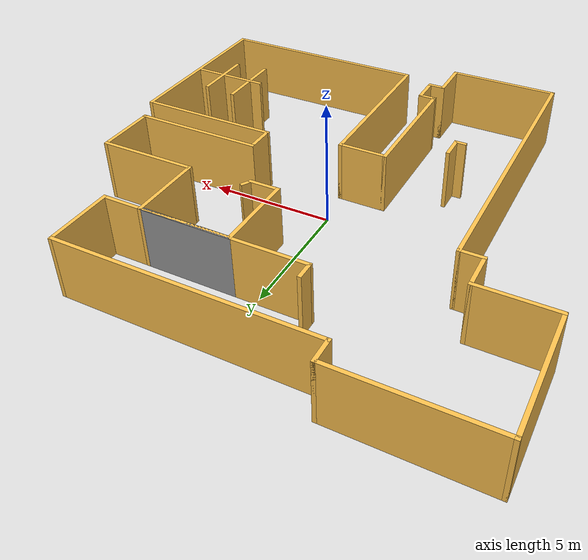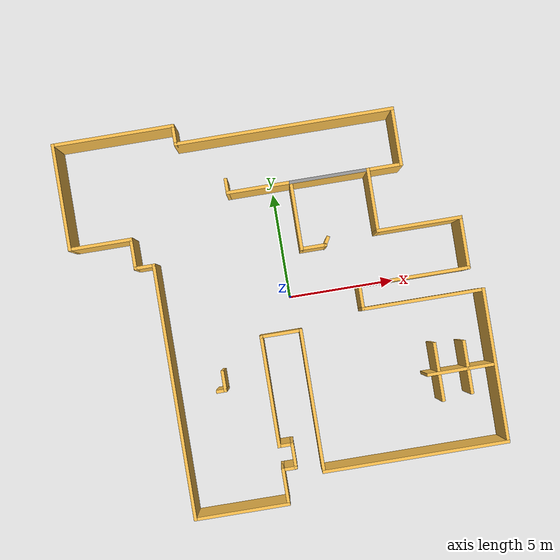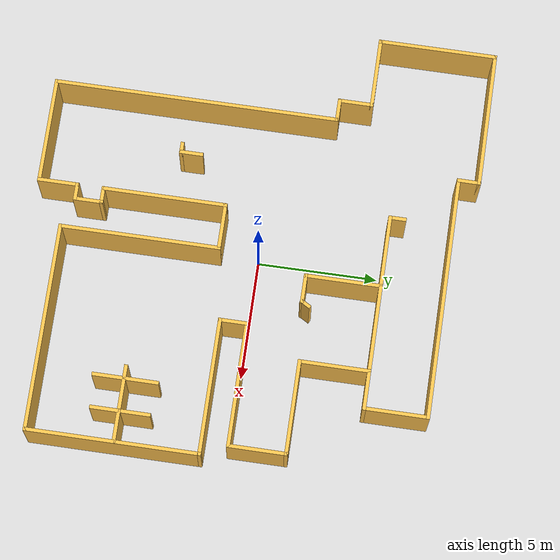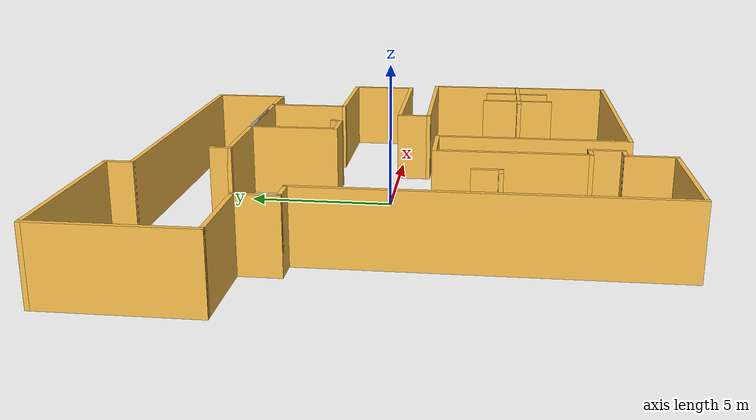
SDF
<?xml version='1.0'?>
<sdf version='1.6'>
  <model name='map_103'>
    <pose frame=''>-0.429802 -0.384357 0 0 -0 0</pose>
    <link name='Wall_10'>
      <collision name='Wall_10_Collision'>
        <geometry>
          <box>
            <size>1 0.15 2.5</size>
          </box>
        </geometry>
        <pose frame=''>0 0 1.25 0 -0 0</pose>
      </collision>
      <visual name='Wall_10_Visual'>
        <pose frame=''>0 0 1.25 0 -0 0</pose>
        <geometry>
          <box>
            <size>1 0.15 2.5</size>
          </box>
        </geometry>
        <material>
          <script>
            <uri>file://media/materials/scripts/gazebo.material</uri>
            <name>Gazebo/Grey</name>
          </script>
          <ambient>1 0.764706 0.305882 1</ambient>
        </material>
        <meta>
          <layer>0</layer>
        </meta>
      </visual>
      <pose frame=''>-5.975 2.825 0 0 -0 0</pose>
    </link>
    <link name='Wall_11'>
      <collision name='Wall_11_Collision'>
        <geometry>
          <box>
            <size>12 0.15 2.5</size>
          </box>
        </geometry>
        <pose frame=''>0 0 1.25 0 -0 0</pose>
      </collision>
      <visual name='Wall_11_Visual'>
        <pose frame=''>0 0 1.25 0 -0 0</pose>
        <geometry>
          <box>
            <size>12 0.15 2.5</size>
          </box>
        </geometry>
        <material>
          <script>
            <uri>file://media/materials/scripts/gazebo.material</uri>
            <name>Gazebo/Grey</name>
          </script>
          <ambient>1 0.764706 0.305882 1</ambient>
        </material>
        <meta>
          <layer>0</layer>
        </meta>
      </visual>
      <pose frame=''>-5.55 -3.1 0 0 -0 -1.5708</pose>
    </link>
    <link name='Wall_12'>
      <collision name='Wall_12_Collision'>
        <geometry>
          <box>
            <size>4.5 0.15 2.5</size>
          </box>
        </geometry>
        <pose frame=''>0 0 1.25 0 -0 0</pose>
      </collision>
      <visual name='Wall_12_Visual'>
        <pose frame=''>0 0 1.25 0 -0 0</pose>
        <geometry>
          <box>
            <size>4.5 0.15 2.5</size>
          </box>
        </geometry>
        <material>
          <script>
            <uri>file://media/materials/scripts/gazebo.material</uri>
            <name>Gazebo/Grey</name>
          </script>
          <ambient>1 0.764706 0.305882 1</ambient>
        </material>
        <meta>
          <layer>0</layer>
        </meta>
      </visual>
      <pose frame=''>-3.375 -9.025 0 0 -0 0</pose>
    </link>
    <link name='Wall_13'>
      <collision name='Wall_13_Collision'>
        <geometry>
          <box>
            <size>1.75 0.15 2.5</size>
          </box>
        </geometry>
        <pose frame=''>0 0 1.25 0 -0 0</pose>
      </collision>
      <visual name='Wall_13_Visual'>
        <pose frame=''>0 0 1.25 0 -0 0</pose>
        <geometry>
          <box>
            <size>1.75 0.15 2.5</size>
          </box>
        </geometry>
        <material>
          <script>
            <uri>file://media/materials/scripts/gazebo.material</uri>
            <name>Gazebo/Grey</name>
          </script>
          <ambient>1 0.764706 0.305882 1</ambient>
        </material>
        <meta>
          <layer>0</layer>
        </meta>
      </visual>
      <pose frame=''>-1.2 -8.225 0 0 -0 1.5708</pose>
    </link>
    <link name='Wall_14'>
      <collision name='Wall_14_Collision'>
        <geometry>
          <box>
            <size>0.75 0.15 2.5</size>
          </box>
        </geometry>
        <pose frame=''>0 0 1.25 0 -0 0</pose>
      </collision>
      <visual name='Wall_14_Visual'>
        <pose frame=''>0 0 1.25 0 -0 0</pose>
        <geometry>
          <box>
            <size>0.75 0.15 2.5</size>
          </box>
        </geometry>
        <material>
          <script>
            <uri>file://media/materials/scripts/gazebo.material</uri>
            <name>Gazebo/Grey</name>
          </script>
          <ambient>1 0.764706 0.305882 1</ambient>
        </material>
        <meta>
          <layer>0</layer>
        </meta>
      </visual>
      <pose frame=''>-0.9 -7.425 0 0 -0 0</pose>
    </link>
    <link name='Wall_15'>
      <collision name='Wall_15_Collision'>
        <geometry>
          <box>
            <size>1.25 0.15 2.5</size>
          </box>
        </geometry>
        <pose frame=''>0 0 1.25 0 -0 0</pose>
      </collision>
      <visual name='Wall_15_Visual'>
        <pose frame=''>0 0 1.25 0 -0 0</pose>
        <geometry>
          <box>
            <size>1.25 0.15 2.5</size>
          </box>
        </geometry>
        <material>
          <script>
            <uri>file://media/materials/scripts/gazebo.material</uri>
            <name>Gazebo/Grey</name>
          </script>
          <ambient>1 0.764706 0.305882 1</ambient>
        </material>
        <meta>
          <layer>0</layer>
        </meta>
      </visual>
      <pose frame=''>-0.6 -6.875 0 0 -0 1.5708</pose>
    </link>
    <link name='Wall_16'>
      <collision name='Wall_16_Collision'>
        <geometry>
          <box>
            <size>0.75 0.15 2.5</size>
          </box>
        </geometry>
        <pose frame=''>0 0 1.25 0 -0 0</pose>
      </collision>
      <visual name='Wall_16_Visual'>
        <pose frame=''>0 0 1.25 0 -0 0</pose>
        <geometry>
          <box>
            <size>0.75 0.15 2.5</size>
          </box>
        </geometry>
        <material>
          <script>
            <uri>file://media/materials/scripts/gazebo.material</uri>
            <name>Gazebo/Grey</name>
          </script>
          <ambient>1 0.764706 0.305882 1</ambient>
        </material>
        <meta>
          <layer>0</layer>
        </meta>
      </visual>
      <pose frame=''>-0.9 -6.325 0 0 -0 3.14159</pose>
    </link>
    <link name='Wall_20'>
      <collision name='Wall_20_Collision'>
        <geometry>
          <box>
            <size>8.75 0.15 2.5</size>
          </box>
        </geometry>
        <pose frame=''>0 0 1.25 0 -0 0</pose>
      </collision>
      <visual name='Wall_20_Visual'>
        <pose frame=''>0 0 1.25 0 -0 0</pose>
        <geometry>
          <box>
            <size>8.75 0.15 2.5</size>
          </box>
        </geometry>
        <material>
          <script>
            <uri>file://media/materials/scripts/gazebo.material</uri>
            <name>Gazebo/Grey</name>
          </script>
          <ambient>1 0.764706 0.305882 1</ambient>
        </material>
        <meta>
          <layer>0</layer>
        </meta>
      </visual>
      <pose frame=''>4.95 -7.825 0 0 -0 0</pose>
    </link>
    <link name='Wall_21'>
      <collision name='Wall_21_Collision'>
        <geometry>
          <box>
            <size>7.25 0.15 2.5</size>
          </box>
        </geometry>
        <pose frame=''>0 0 1.25 0 -0 0</pose>
      </collision>
      <visual name='Wall_21_Visual'>
        <pose frame=''>0 0 1.25 0 -0 0</pose>
        <geometry>
          <box>
            <size>7.25 0.15 2.5</size>
          </box>
        </geometry>
        <material>
          <script>
            <uri>file://media/materials/scripts/gazebo.material</uri>
            <name>Gazebo/Grey</name>
          </script>
          <ambient>1 0.764706 0.305882 1</ambient>
        </material>
        <meta>
          <layer>0</layer>
        </meta>
      </visual>
      <pose frame=''>9.25 -4.275 0 0 -0 1.5708</pose>
    </link>
    <link name='Wall_22'>
      <collision name='Wall_22_Collision'>
        <geometry>
          <box>
            <size>5.75 0.15 2.5</size>
          </box>
        </geometry>
        <pose frame=''>0 0 1.25 0 -0 0</pose>
      </collision>
      <visual name='Wall_22_Visual'>
        <pose frame=''>0 0 1.25 0 -0 0</pose>
        <geometry>
          <box>
            <size>5.75 0.15 2.5</size>
          </box>
        </geometry>
        <material>
          <script>
            <uri>file://media/materials/scripts/gazebo.material</uri>
            <name>Gazebo/Grey</name>
          </script>
          <ambient>1 0.764706 0.305882 1</ambient>
        </material>
        <meta>
          <layer>0</layer>
        </meta>
      </visual>
      <pose frame=''>6.45 -0.725 0 0 -0 3.14159</pose>
    </link>
    <link name='Wall_23'>
      <collision name='Wall_23_Collision'>
        <geometry>
          <box>
            <size>1.25 0.15 2.5</size>
          </box>
        </geometry>
        <pose frame=''>0 0 1.25 0 -0 0</pose>
      </collision>
      <visual name='Wall_23_Visual'>
        <pose frame=''>0 0 1.25 0 -0 0</pose>
        <geometry>
          <box>
            <size>1.25 0.15 2.5</size>
          </box>
        </geometry>
        <material>
          <script>
            <uri>file://media/materials/scripts/gazebo.material</uri>
            <name>Gazebo/Grey</name>
          </script>
          <ambient>1 0.764706 0.305882 1</ambient>
        </material>
        <meta>
          <layer>0</layer>
        </meta>
      </visual>
      <pose frame=''>3.65 -0.175 0 0 -0 1.5708</pose>
    </link>
    <link name='Wall_24'>
      <collision name='Wall_24_Collision'>
        <geometry>
          <box>
            <size>5.25 0.15 2.5</size>
          </box>
        </geometry>
        <pose frame=''>0 0 1.25 0 -0 0</pose>
      </collision>
      <visual name='Wall_24_Visual'>
        <pose frame=''>0 0 1.25 0 -0 0</pose>
        <geometry>
          <box>
            <size>5.25 0.15 2.5</size>
          </box>
        </geometry>
        <material>
          <script>
            <uri>file://media/materials/scripts/gazebo.material</uri>
            <name>Gazebo/Grey</name>
          </script>
          <ambient>1 0.764706 0.305882 1</ambient>
        </material>
        <meta>
          <layer>0</layer>
        </meta>
      </visual>
      <pose frame=''>6.2 0.375 0 0 -0 0</pose>
    </link>
    <link name='Wall_26'>
      <collision name='Wall_26_Collision'>
        <geometry>
          <box>
            <size>2.5 0.15 2.5</size>
          </box>
        </geometry>
        <pose frame=''>0 0 1.25 0 -0 0</pose>
      </collision>
      <visual name='Wall_26_Visual'>
        <pose frame=''>0 0 1.25 0 -0 0</pose>
        <geometry>
          <box>
            <size>2.5 0.15 2.5</size>
          </box>
        </geometry>
        <material>
          <script>
            <uri>file://media/materials/scripts/gazebo.material</uri>
            <name>Gazebo/Grey</name>
          </script>
          <ambient>1 0.764706 0.305882 1</ambient>
        </material>
        <meta>
          <layer>0</layer>
        </meta>
      </visual>
      <pose frame=''>8.75 1.55 0 0 -0 1.5708</pose>
    </link>
    <link name='Wall_27'>
      <collision name='Wall_27_Collision'>
        <geometry>
          <box>
            <size>4 0.15 2.5</size>
          </box>
        </geometry>
        <pose frame=''>0 0 1.25 0 -0 0</pose>
      </collision>
      <visual name='Wall_27_Visual'>
        <pose frame=''>0 0 1.25 0 -0 0</pose>
        <geometry>
          <box>
            <size>4 0.15 2.5</size>
          </box>
        </geometry>
        <material>
          <script>
            <uri>file://media/materials/scripts/gazebo.material</uri>
            <name>Gazebo/Grey</name>
          </script>
          <ambient>1 0.764706 0.305882 1</ambient>
        </material>
        <meta>
          <layer>0</layer>
        </meta>
      </visual>
      <pose frame=''>6.825 2.725 0 0 -0 3.14159</pose>
    </link>
    <link name='Wall_28'>
      <collision name='Wall_28_Collision'>
        <geometry>
          <box>
            <size>3 0.15 2.5</size>
          </box>
        </geometry>
        <pose frame=''>0 0 1.25 0 -0 0</pose>
      </collision>
      <visual name='Wall_28_Visual'>
        <pose frame=''>0 0 1.25 0 -0 0</pose>
        <geometry>
          <box>
            <size>3 0.15 2.5</size>
          </box>
        </geometry>
        <material>
          <script>
            <uri>file://media/materials/scripts/gazebo.material</uri>
            <name>Gazebo/Grey</name>
          </script>
          <ambient>1 0.764706 0.305882 1</ambient>
        </material>
        <meta>
          <layer>0</layer>
        </meta>
      </visual>
      <pose frame=''>4.9 4.15 0 0 -0 1.5708</pose>
    </link>
    <link name='Wall_29'>
      <collision name='Wall_29_Collision'>
        <geometry>
          <box>
            <size>3.75 0.15 2.5</size>
          </box>
        </geometry>
        <pose frame=''>0 0 1.25 0 -0 0</pose>
      </collision>
      <visual name='Wall_29_Visual'>
        <pose frame=''>0 0 1.25 0 -0 0</pose>
        <geometry>
          <box>
            <size>3.75 0.15 2.5</size>
          </box>
        </geometry>
        <material>
          <script>
            <uri>file://media/materials/scripts/gazebo.material</uri>
            <name>Gazebo/Grey</name>
          </script>
          <ambient>1 1 1 1</ambient>
        </material>
        <meta>
          <layer>0</layer>
        </meta>
      </visual>
      <pose frame=''>3.1 5.575 0 0 -0 3.14159</pose>
    </link>
    <link name='Wall_30'>
      <collision name='Wall_30_Collision'>
        <geometry>
          <box>
            <size>3.25 0.15 2.5</size>
          </box>
        </geometry>
        <pose frame=''>0 0 1.25 0 -0 0</pose>
      </collision>
      <visual name='Wall_30_Visual'>
        <pose frame=''>0 0 1.25 0 -0 0</pose>
        <geometry>
          <box>
            <size>3.25 0.15 2.5</size>
          </box>
        </geometry>
        <material>
          <script>
            <uri>file://media/materials/scripts/gazebo.material</uri>
            <name>Gazebo/Grey</name>
          </script>
          <ambient>1 0.764706 0.305882 1</ambient>
        </material>
        <meta>
          <layer>0</layer>
        </meta>
      </visual>
      <pose frame=''>1.3 4.025 0 0 -0 -1.5708</pose>
    </link>
    <link name='Wall_31'>
      <collision name='Wall_31_Collision'>
        <geometry>
          <box>
            <size>1.25 0.15 2.5</size>
          </box>
        </geometry>
        <pose frame=''>0 0 1.25 0 -0 0</pose>
      </collision>
      <visual name='Wall_31_Visual'>
        <pose frame=''>0 0 1.25 0 -0 0</pose>
        <geometry>
          <box>
            <size>1.25 0.15 2.5</size>
          </box>
        </geometry>
        <material>
          <script>
            <uri>file://media/materials/scripts/gazebo.material</uri>
            <name>Gazebo/Grey</name>
          </script>
          <ambient>1 0.764706 0.305882 1</ambient>
        </material>
        <meta>
          <layer>0</layer>
        </meta>
      </visual>
      <pose frame=''>1.85 2.475 0 0 -0 0</pose>
    </link>
    <link name='Wall_33'>
      <collision name='Wall_33_Collision'>
        <geometry>
          <box>
            <size>0.5 0.15 2.5</size>
          </box>
        </geometry>
        <pose frame=''>0 0 1.25 0 -0 0</pose>
      </collision>
      <visual name='Wall_33_Visual'>
        <pose frame=''>0 0 1.25 0 -0 0</pose>
        <geometry>
          <box>
            <size>0.5 0.15 2.5</size>
          </box>
        </geometry>
        <material>
          <script>
            <uri>file://media/materials/scripts/gazebo.material</uri>
            <name>Gazebo/Grey</name>
          </script>
          <ambient>1 0.764706 0.305882 1</ambient>
        </material>
        <meta>
          <layer>0</layer>
        </meta>
      </visual>
      <pose frame=''>2.4875 2.62656 0 0 -0 1.0472</pose>
    </link>
    <link name='Wall_35'>
      <collision name='Wall_35_Collision'>
        <geometry>
          <box>
            <size>5.25 0.15 2.5</size>
          </box>
        </geometry>
        <pose frame=''>0 0 1.25 0 -0 0</pose>
      </collision>
      <visual name='Wall_35_Visual'>
        <pose frame=''>0 0 1.25 0 -0 0</pose>
        <geometry>
          <box>
            <size>5.25 0.15 2.5</size>
          </box>
        </geometry>
        <material>
          <script>
            <uri>file://media/materials/scripts/gazebo.material</uri>
            <name>Gazebo/Grey</name>
          </script>
          <ambient>1 0.764706 0.305882 1</ambient>
        </material>
        <meta>
          <layer>0</layer>
        </meta>
      </visual>
      <pose frame=''>-1.2 -3.775 0 0 -0 1.5708</pose>
    </link>
    <link name='Wall_36'>
      <collision name='Wall_36_Collision'>
        <geometry>
          <box>
            <size>2 0.15 2.5</size>
          </box>
        </geometry>
        <pose frame=''>0 0 1.25 0 -0 0</pose>
      </collision>
      <visual name='Wall_36_Visual'>
        <pose frame=''>0 0 1.25 0 -0 0</pose>
        <geometry>
          <box>
            <size>2 0.15 2.5</size>
          </box>
        </geometry>
        <material>
          <script>
            <uri>file://media/materials/scripts/gazebo.material</uri>
            <name>Gazebo/Grey</name>
          </script>
          <ambient>1 0.764706 0.305882 1</ambient>
        </material>
        <meta>
          <layer>0</layer>
        </meta>
      </visual>
      <pose frame=''>-0.275 -1.225 0 0 -0 0</pose>
    </link>
    <link name='Wall_38'>
      <collision name='Wall_38_Collision'>
        <geometry>
          <box>
            <size>6.75 0.15 2.5</size>
          </box>
        </geometry>
        <pose frame=''>0 0 1.25 0 -0 0</pose>
      </collision>
      <visual name='Wall_38_Visual'>
        <pose frame=''>0 0 1.25 0 -0 0</pose>
        <geometry>
          <box>
            <size>6.75 0.15 2.5</size>
          </box>
        </geometry>
        <material>
          <script>
            <uri>file://media/materials/scripts/gazebo.material</uri>
            <name>Gazebo/Grey</name>
          </script>
          <ambient>1 0.764706 0.305882 1</ambient>
        </material>
        <meta>
          <layer>0</layer>
        </meta>
      </visual>
      <pose frame=''>0.65 -4.525 0 0 -0 -1.5708</pose>
    </link>
    <link name='Wall_4'>
      <collision name='Wall_4_Collision'>
        <geometry>
          <box>
            <size>5 0.15 2.5</size>
          </box>
        </geometry>
        <pose frame=''>0 0 1.25 0 -0 0</pose>
      </collision>
      <visual name='Wall_4_Visual'>
        <pose frame=''>0 0 1.25 0 -0 0</pose>
        <geometry>
          <box>
            <size>5 0.15 2.5</size>
          </box>
        </geometry>
        <material>
          <script>
            <uri>file://media/materials/scripts/gazebo.material</uri>
            <name>Gazebo/Grey</name>
          </script>
          <ambient>1 0.764706 0.305882 1</ambient>
        </material>
        <meta>
          <layer>0</layer>
        </meta>
      </visual>
      <pose frame=''>-9.25 6.6 0 0 -0 -1.5708</pose>
    </link>
    <link name='Wall_40'>
      <collision name='Wall_40_Collision'>
        <geometry>
          <box>
            <size>5.75 0.15 2.5</size>
          </box>
        </geometry>
        <pose frame=''>0 0 1.25 0 -0 0</pose>
      </collision>
      <visual name='Wall_40_Visual'>
        <pose frame=''>0 0 1.25 0 -0 0</pose>
        <geometry>
          <box>
            <size>5.75 0.15 2.5</size>
          </box>
        </geometry>
        <material>
          <script>
            <uri>file://media/materials/scripts/gazebo.material</uri>
            <name>Gazebo/Grey</name>
          </script>
          <ambient>1 0.764706 0.305882 1</ambient>
        </material>
        <meta>
          <layer>0</layer>
        </meta>
      </visual>
      <pose frame=''>-6.45 9.025 0 0 -0 0</pose>
    </link>
    <link name='Wall_43'>
      <collision name='Wall_43_Collision'>
        <geometry>
          <box>
            <size>1 0.15 2.5</size>
          </box>
        </geometry>
        <pose frame=''>0 0 1.25 0 -0 0</pose>
      </collision>
      <visual name='Wall_43_Visual'>
        <pose frame=''>0 0 1.25 0 -0 0</pose>
        <geometry>
          <box>
            <size>1 0.15 2.5</size>
          </box>
        </geometry>
        <material>
          <script>
            <uri>file://media/materials/scripts/gazebo.material</uri>
            <name>Gazebo/Grey</name>
          </script>
          <ambient>1 0.764706 0.305882 1</ambient>
        </material>
        <meta>
          <layer>0</layer>
        </meta>
      </visual>
      <pose frame=''>-3.65 8.6 0 0 -0 -1.5708</pose>
    </link>
    <link name='Wall_44'>
      <collision name='Wall_44_Collision'>
        <geometry>
          <box>
            <size>10.25 0.15 2.5</size>
          </box>
        </geometry>
        <pose frame=''>0 0 1.25 0 -0 0</pose>
      </collision>
      <visual name='Wall_44_Visual'>
        <pose frame=''>0 0 1.25 0 -0 0</pose>
        <geometry>
          <box>
            <size>10.25 0.15 2.5</size>
          </box>
        </geometry>
        <material>
          <script>
            <uri>file://media/materials/scripts/gazebo.material</uri>
            <name>Gazebo/Grey</name>
          </script>
          <ambient>1 0.764706 0.305882 1</ambient>
        </material>
        <meta>
          <layer>0</layer>
        </meta>
      </visual>
      <pose frame=''>1.4 8.175 0 0 -0 0</pose>
    </link>
    <link name='Wall_48'>
      <collision name='Wall_48_Collision'>
        <geometry>
          <box>
            <size>2.75 0.15 2.5</size>
          </box>
        </geometry>
        <pose frame=''>0 0 1.25 0 -0 0</pose>
      </collision>
      <visual name='Wall_48_Visual'>
        <pose frame=''>0 0 1.25 0 -0 0</pose>
        <geometry>
          <box>
            <size>2.75 0.15 2.5</size>
          </box>
        </geometry>
        <material>
          <script>
            <uri>file://media/materials/scripts/gazebo.material</uri>
            <name>Gazebo/Grey</name>
          </script>
          <ambient>1 0.764706 0.305882 1</ambient>
        </material>
        <meta>
          <layer>0</layer>
        </meta>
      </visual>
      <pose frame=''>6.45 6.875 0 0 -0 -1.5708</pose>
    </link>
    <link name='Wall_49'>
      <collision name='Wall_49_Collision'>
        <geometry>
          <box>
            <size>8.25 0.15 2.5</size>
          </box>
        </geometry>
        <pose frame=''>0 0 1.25 0 -0 0</pose>
      </collision>
      <visual name='Wall_49_Visual'>
        <pose frame=''>0 0 1.25 0 -0 0</pose>
        <geometry>
          <box>
            <size>8.25 0.15 2.5</size>
          </box>
        </geometry>
        <material>
          <script>
            <uri>file://media/materials/scripts/gazebo.material</uri>
            <name>Gazebo/Grey</name>
          </script>
          <ambient>1 0.764706 0.305882 1</ambient>
        </material>
        <meta>
          <layer>0</layer>
        </meta>
      </visual>
      <pose frame=''>2.4 5.575 0 0 -0 3.14159</pose>
    </link>
    <link name='Wall_50'>
      <collision name='Wall_50_Collision'>
        <geometry>
          <box>
            <size>0.75 0.15 2.5</size>
          </box>
        </geometry>
        <pose frame=''>0 0 1.25 0 -0 0</pose>
      </collision>
      <visual name='Wall_50_Visual'>
        <pose frame=''>0 0 1.25 0 -0 0</pose>
        <geometry>
          <box>
            <size>0.75 0.15 2.5</size>
          </box>
        </geometry>
        <material>
          <script>
            <uri>file://media/materials/scripts/gazebo.material</uri>
            <name>Gazebo/Grey</name>
          </script>
          <ambient>1 0.764706 0.305882 1</ambient>
        </material>
        <meta>
          <layer>0</layer>
        </meta>
      </visual>
      <pose frame=''>-1.65 5.875 0 0 -0 1.5708</pose>
    </link>
    <link name='Wall_52'>
      <collision name='Wall_52_Collision'>
        <geometry>
          <box>
            <size>3.25 0.15 2.5</size>
          </box>
        </geometry>
        <pose frame=''>0 0 1.25 0 -0 0</pose>
      </collision>
      <visual name='Wall_52_Visual'>
        <pose frame=''>0 0 1.25 0 -0 0</pose>
        <geometry>
          <box>
            <size>3.25 0.15 2.5</size>
          </box>
        </geometry>
        <material>
          <script>
            <uri>file://media/materials/scripts/gazebo.material</uri>
            <name>Gazebo/Grey</name>
          </script>
          <ambient>1 0.764706 0.305882 1</ambient>
        </material>
        <meta>
          <layer>0</layer>
        </meta>
      </visual>
      <pose frame=''>7.67584 -4.20349 0 0 -0 0</pose>
    </link>
    <link name='Wall_54'>
      <collision name='Wall_54_Collision'>
        <geometry>
          <box>
            <size>2.75 0.15 2.5</size>
          </box>
        </geometry>
        <pose frame=''>0 0 1.25 0 -0 0</pose>
      </collision>
      <visual name='Wall_54_Visual'>
        <pose frame=''>0 0 1.25 0 -0 0</pose>
        <geometry>
          <box>
            <size>2.75 0.15 2.5</size>
          </box>
        </geometry>
        <material>
          <script>
            <uri>file://media/materials/scripts/gazebo.material</uri>
            <name>Gazebo/Grey</name>
          </script>
          <ambient>1 0.764706 0.305882 1</ambient>
        </material>
        <meta>
          <layer>0</layer>
        </meta>
      </visual>
      <pose frame=''>6.61807 -4.14988 0 0 -0 -1.5708</pose>
    </link>
    <link name='Wall_56'>
      <collision name='Wall_56_Collision'>
        <geometry>
          <box>
            <size>2.5 0.15 2.5</size>
          </box>
        </geometry>
        <pose frame=''>0 0 1.25 0 -0 0</pose>
      </collision>
      <visual name='Wall_56_Visual'>
        <pose frame=''>0 0 1.25 0 -0 0</pose>
        <geometry>
          <box>
            <size>2.5 0.15 2.5</size>
          </box>
        </geometry>
        <material>
          <script>
            <uri>file://media/materials/scripts/gazebo.material</uri>
            <name>Gazebo/Grey</name>
          </script>
          <ambient>1 0.764706 0.305882 1</ambient>
        </material>
        <meta>
          <layer>0</layer>
        </meta>
      </visual>
      <pose frame=''>7.97168 -4.14794 0 0 -0 -1.5708</pose>
    </link>
    <link name='Wall_58'>
      <collision name='Wall_58_Collision'>
        <geometry>
          <box>
            <size>1 0.15 2.5</size>
          </box>
        </geometry>
        <pose frame=''>0 0 1.25 0 -0 0</pose>
      </collision>
      <visual name='Wall_58_Visual'>
        <pose frame=''>0 0 1.25 0 -0 0</pose>
        <geometry>
          <box>
            <size>1 0.15 2.5</size>
          </box>
        </geometry>
        <material>
          <script>
            <uri>file://media/materials/scripts/gazebo.material</uri>
            <name>Gazebo/Grey</name>
          </script>
          <ambient>1 0.764706 0.305882 1</ambient>
        </material>
        <meta>
          <layer>0</layer>
        </meta>
      </visual>
      <pose frame=''>-3.22639 -2.96724 0 0 -0 -1.5708</pose>
    </link>
    <link name='Wall_59'>
      <collision name='Wall_59_Collision'>
        <geometry>
          <box>
            <size>0.5 0.15 2.5</size>
          </box>
        </geometry>
        <pose frame=''>0 0 1.25 0 -0 0</pose>
      </collision>
      <visual name='Wall_59_Visual'>
        <pose frame=''>0 0 1.25 0 -0 0</pose>
        <geometry>
          <box>
            <size>0.5 0.15 2.5</size>
          </box>
        </geometry>
        <material>
          <script>
            <uri>file://media/materials/scripts/gazebo.material</uri>
            <name>Gazebo/Grey</name>
          </script>
          <ambient>1 0.764706 0.305882 1</ambient>
        </material>
        <meta>
          <layer>0</layer>
        </meta>
      </visual>
      <pose frame=''>-3.40139 -3.39224 0 0 -0 3.14159</pose>
    </link>
    <link name='Wall_8'>
      <collision name='Wall_8_Collision'>
        <geometry>
          <box>
            <size>3 0.15 2.5</size>
          </box>
        </geometry>
        <pose frame=''>0 0 1.25 0 -0 0</pose>
      </collision>
      <visual name='Wall_8_Visual'>
        <pose frame=''>0 0 1.25 0 -0 0</pose>
        <geometry>
          <box>
            <size>3 0.15 2.5</size>
          </box>
        </geometry>
        <material>
          <script>
            <uri>file://media/materials/scripts/gazebo.material</uri>
            <name>Gazebo/Grey</name>
          </script>
          <ambient>1 0.764706 0.305882 1</ambient>
        </material>
        <meta>
          <layer>0</layer>
        </meta>
      </visual>
      <pose frame=''>-7.825 4.175 0 0 -0 0</pose>
    </link>
    <link name='Wall_9'>
      <collision name='Wall_9_Collision'>
        <geometry>
          <box>
            <size>1.5 0.15 2.5</size>
          </box>
        </geometry>
        <pose frame=''>0 0 1.25 0 -0 0</pose>
      </collision>
      <visual name='Wall_9_Visual'>
        <pose frame=''>0 0 1.25 0 -0 0</pose>
        <geometry>
          <box>
            <size>1.5 0.15 2.5</size>
          </box>
        </geometry>
        <material>
          <script>
            <uri>file://media/materials/scripts/gazebo.material</uri>
            <name>Gazebo/Grey</name>
          </script>
          <ambient>1 0.764706 0.305882 1</ambient>
        </material>
        <meta>
          <layer>0</layer>
        </meta>
      </visual>
      <pose frame=''>-6.4 3.5 0 0 -0 -1.5708</pose>
    </link>
    <static>1</static>
  </model>
</sdf>
